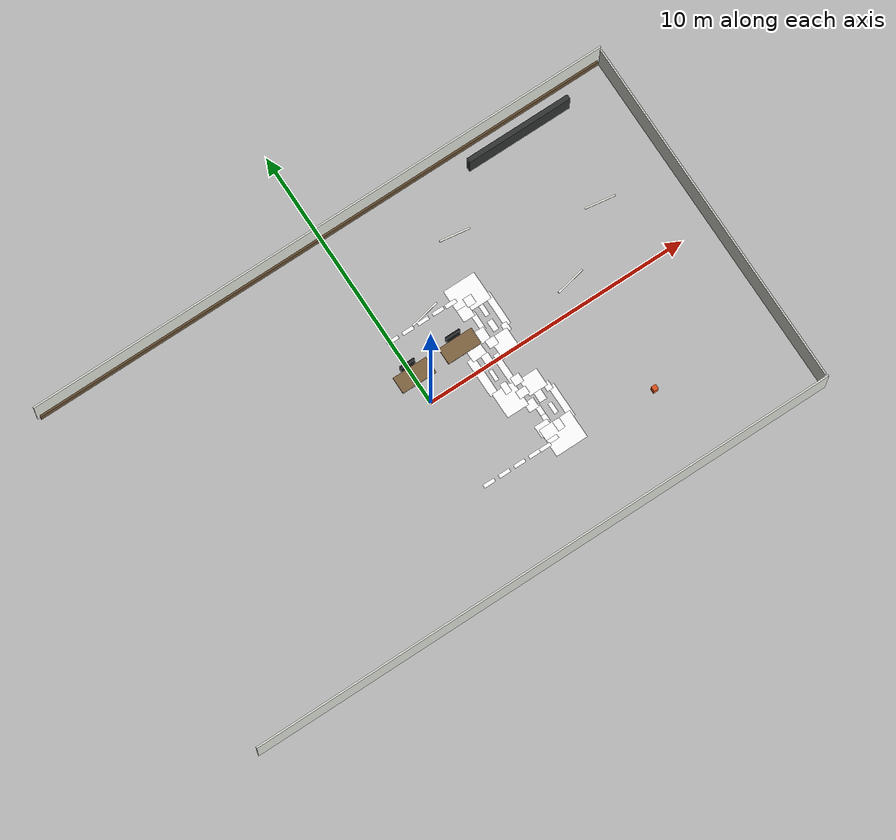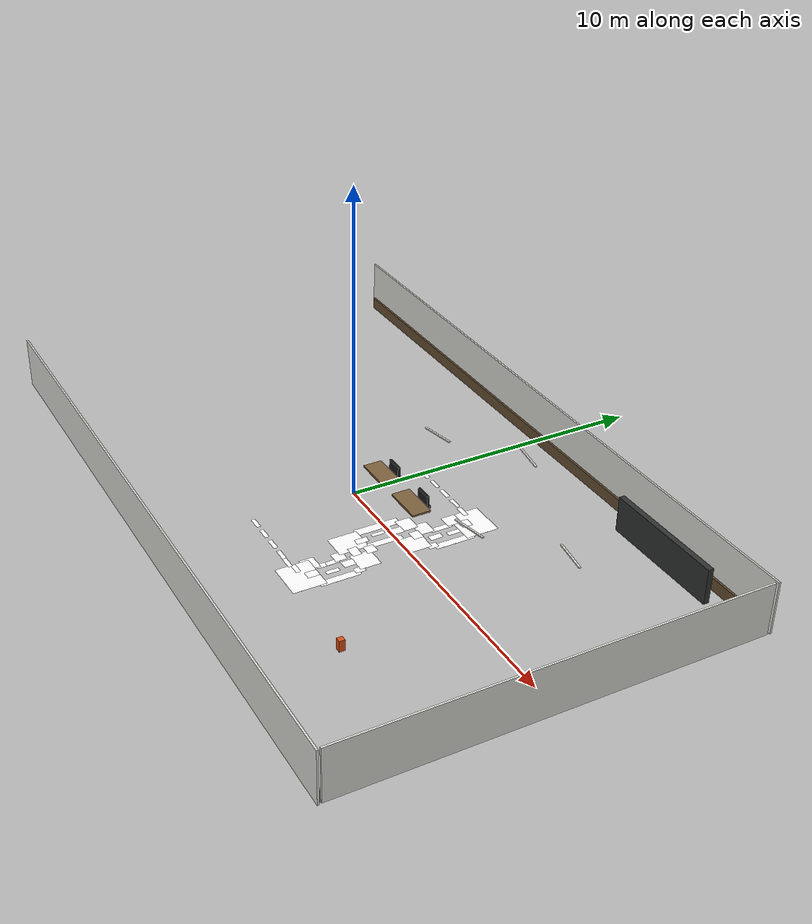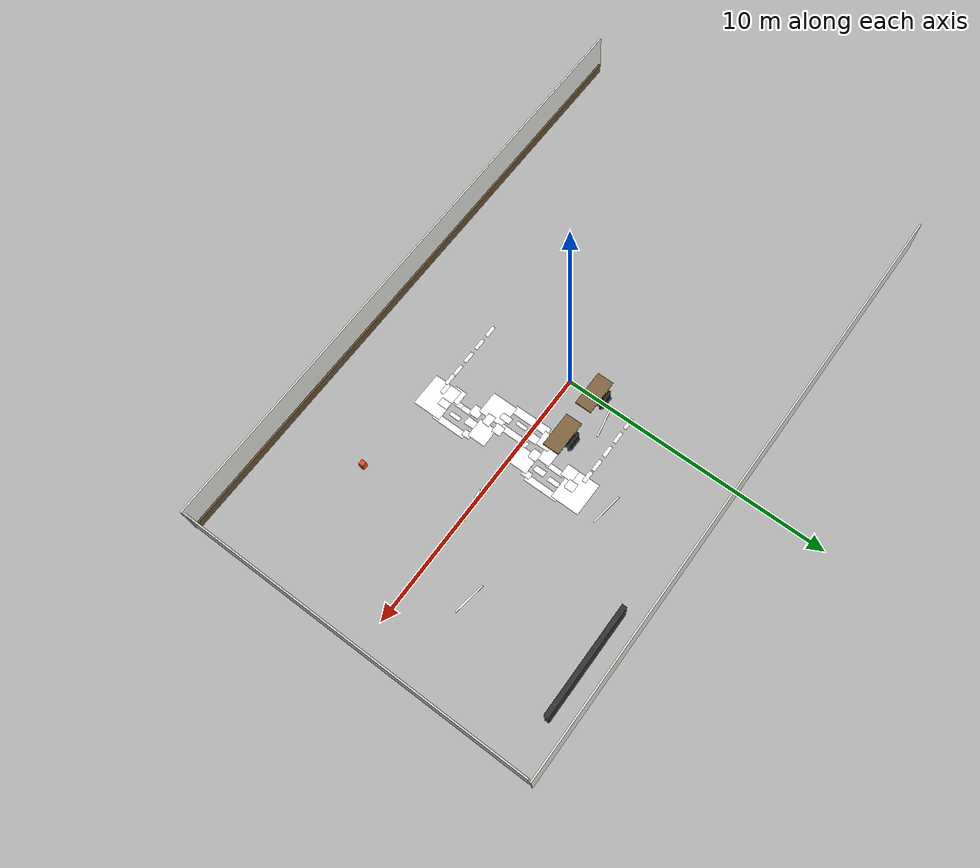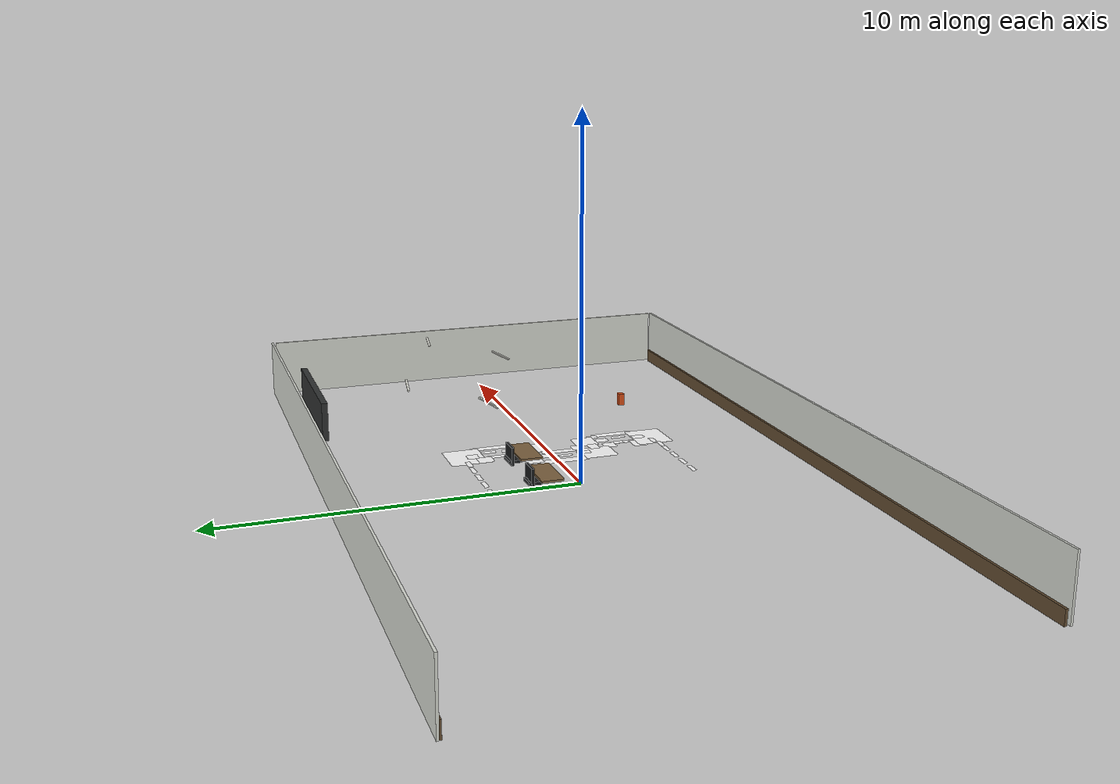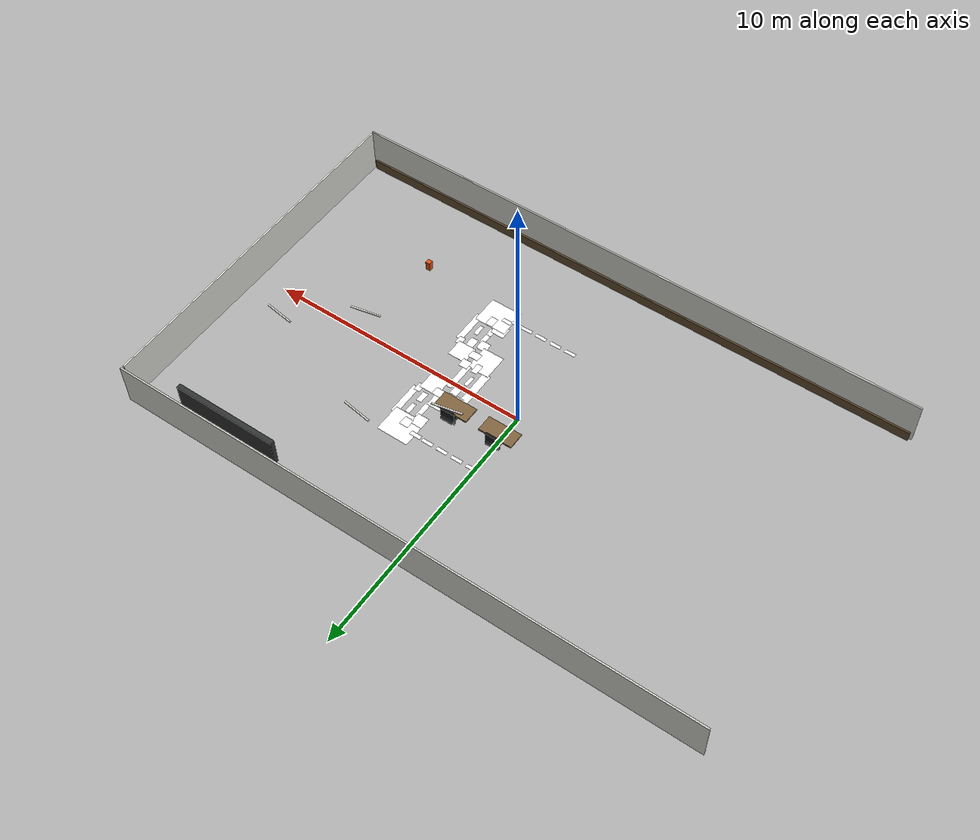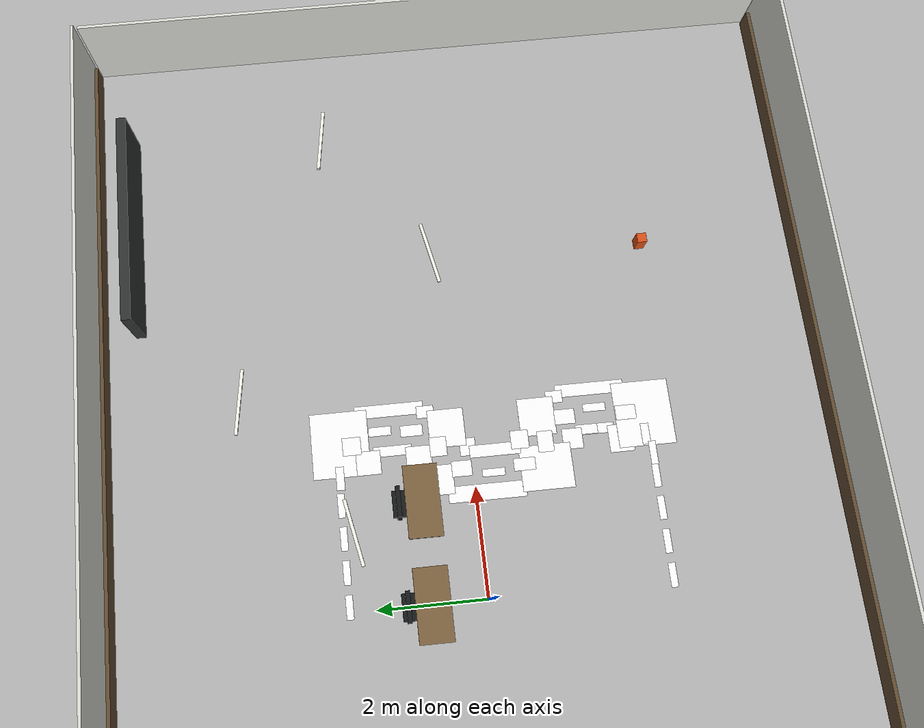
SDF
<sdf version="1.7">
 <world name="kookmin_xycar_track">
  <model name="white_line_cad_07">
   <static>true</static>
   <pose>2.8650 -2.3150 0.0152 0 0 0</pose>
   <link name="white_line_cad_07_surface">
    <visual name="visual">
     <cast_shadows>false</cast_shadows>
     <geometry><plane><normal>0 0 1</normal><size>0.1900 0.7100</size></plane></geometry>
     <material>
      <ambient>1 1 1 1</ambient>
      <diffuse>1 1 1 1</diffuse>
      <emissive>0.9490 0.9490 0.9255 1</emissive>
      <pbr>
       <metal>
        <albedo_map>file://media/materials/textures/kookmin_white_line_cad_07.png</albedo_map>
        <roughness>1</roughness>
        <metalness>0</metalness>
       </metal>
      </pbr>
     </material>
    </visual>
   </link>
  </model>
  <model name="white_line_cad_08">
   <static>true</static>
   <pose>2.6450 -2.7750 0.0154 0 0 0</pose>
   <link name="white_line_cad_08_surface">
    <visual name="visual">
     <cast_shadows>false</cast_shadows>
     <geometry><plane><normal>0 0 1</normal><size>0.5100 0.4500</size></plane></geometry>
     <material>
      <ambient>1 1 1 1</ambient>
      <diffuse>1 1 1 1</diffuse>
      <emissive>0.9490 0.9490 0.9255 1</emissive>
      <pbr>
       <metal>
        <albedo_map>file://media/materials/textures/kookmin_white_line_cad_08.png</albedo_map>
        <roughness>1</roughness>
        <metalness>0</metalness>
       </metal>
      </pbr>
     </material>
    </visual>
   </link>
  </model>
  <model name="white_line_cad_09">
   <static>true</static>
   <pose>3.0700 -3.2600 0.0156 0 0 0</pose>
   <link name="white_line_cad_09_surface">
    <visual name="visual">
     <cast_shadows>false</cast_shadows>
     <geometry><plane><normal>0 0 1</normal><size>1.2200 1.0600</size></plane></geometry>
     <material>
      <ambient>1 1 1 1</ambient>
      <diffuse>1 1 1 1</diffuse>
      <emissive>0.9490 0.9490 0.9255 1</emissive>
      <pbr>
       <metal>
        <albedo_map>file://media/materials/textures/kookmin_white_line_cad_09.png</albedo_map>
        <roughness>1</roughness>
        <metalness>0</metalness>
       </metal>
      </pbr>
     </material>
    </visual>
   </link>
  </model>
  <model name="white_line_cad_10">
   <static>true</static>
   <pose>3.6300 -2.3200 0.0158 0 0 0</pose>
   <link name="white_line_cad_10_surface">
    <visual name="visual">
     <cast_shadows>false</cast_shadows>
     <geometry><plane><normal>0 0 1</normal><size>0.2400 1.2800</size></plane></geometry>
     <material>
      <ambient>1 1 1 1</ambient>
      <diffuse>1 1 1 1</diffuse>
      <emissive>0.9490 0.9490 0.9255 1</emissive>
      <pbr>
       <metal>
        <albedo_map>file://media/materials/textures/kookmin_white_line_cad_10.png</albedo_map>
        <roughness>1</roughness>
        <metalness>0</metalness>
       </metal>
      </pbr>
     </material>
    </visual>
   </link>
  </model>
  <model name="white_line_cad_11">
   <static>true</static>
   <pose>3.5350 -1.6450 0.0160 0 0 0</pose>
   <link name="white_line_cad_11_surface">
    <visual name="visual">
     <cast_shadows>false</cast_shadows>
     <geometry><plane><normal>0 0 1</normal><size>0.2300 0.3100</size></plane></geometry>
     <material>
      <ambient>1 1 1 1</ambient>
      <diffuse>1 1 1 1</diffuse>
      <emissive>0.9490 0.9490 0.9255 1</emissive>
      <pbr>
       <metal>
        <albedo_map>file://media/materials/textures/kookmin_white_line_cad_11.png</albedo_map>
        <roughness>1</roughness>
        <metalness>0</metalness>
       </metal>
      </pbr>
     </material>
    </visual>
   </link>
  </model>
  <model name="white_line_cad_12">
   <static>true</static>
   <pose>2.8150 1.4450 0.0162 0 0 0</pose>
   <link name="white_line_cad_12_surface">
    <visual name="visual">
     <cast_shadows>false</cast_shadows>
     <geometry><plane><normal>0 0 1</normal><size>0.1900 0.7100</size></plane></geometry>
     <material>
      <ambient>1 1 1 1</ambient>
      <diffuse>1 1 1 1</diffuse>
      <emissive>0.9490 0.9490 0.9255 1</emissive>
      <pbr>
       <metal>
        <albedo_map>file://media/materials/textures/kookmin_white_line_cad_12.png</albedo_map>
        <roughness>1</roughness>
        <metalness>0</metalness>
       </metal>
      </pbr>
     </material>
    </visual>
   </link>
  </model>
  <model name="white_line_cad_13">
   <static>true</static>
   <pose>2.6000 0.9750 0.0164 0 0 0</pose>
   <link name="white_line_cad_13_surface">
    <visual name="visual">
     <cast_shadows>false</cast_shadows>
     <geometry><plane><normal>0 0 1</normal><size>0.5200 0.4700</size></plane></geometry>
     <material>
      <ambient>1 1 1 1</ambient>
      <diffuse>1 1 1 1</diffuse>
      <emissive>0.9490 0.9490 0.9255 1</emissive>
      <pbr>
       <metal>
        <albedo_map>file://media/materials/textures/kookmin_white_line_cad_13.png</albedo_map>
        <roughness>1</roughness>
        <metalness>0</metalness>
       </metal>
      </pbr>
     </material>
    </visual>
   </link>
  </model>
  <model name="white_line_cad_14">
   <static>true</static>
   <pose>3.0200 2.4000 0.0166 0 0 0</pose>
   <link name="white_line_cad_14_surface">
    <visual name="visual">
     <cast_shadows>false</cast_shadows>
     <geometry><plane><normal>0 0 1</normal><size>1.2200 1.0600</size></plane></geometry>
     <material>
      <ambient>1 1 1 1</ambient>
      <diffuse>1 1 1 1</diffuse>
      <emissive>0.9490 0.9490 0.9255 1</emissive>
      <pbr>
       <metal>
        <albedo_map>file://media/materials/textures/kookmin_white_line_cad_14.png</albedo_map>
        <roughness>1</roughness>
        <metalness>0</metalness>
       </metal>
      </pbr>
     </material>
    </visual>
   </link>
  </model>
  <model name="white_line_cad_15">
   <static>true</static>
   <pose>3.5800 1.4500 0.0168 0 0 0</pose>
   <link name="white_line_cad_15_surface">
    <visual name="visual">
     <cast_shadows>false</cast_shadows>
     <geometry><plane><normal>0 0 1</normal><size>0.2400 1.2800</size></plane></geometry>
     <material>
      <ambient>1 1 1 1</ambient>
      <diffuse>1 1 1 1</diffuse>
      <emissive>0.9490 0.9490 0.9255 1</emissive>
      <pbr>
       <metal>
        <albedo_map>file://media/materials/textures/kookmin_white_line_cad_15.png</albedo_map>
        <roughness>1</roughness>
        <metalness>0</metalness>
       </metal>
      </pbr>
     </material>
    </visual>
   </link>
  </model>
  <model name="white_line_cad_16">
   <static>true</static>
   <pose>3.4850 0.7800 0.0170 0 0 0</pose>
   <link name="white_line_cad_16_surface">
    <visual name="visual">
     <cast_shadows>false</cast_shadows>
     <geometry><plane><normal>0 0 1</normal><size>0.2300 0.3200</size></plane></geometry>
     <material>
      <ambient>1 1 1 1</ambient>
      <diffuse>1 1 1 1</diffuse>
      <emissive>0.9490 0.9490 0.9255 1</emissive>
      <pbr>
       <metal>
        <albedo_map>file://media/materials/textures/kookmin_white_line_cad_16.png</albedo_map>
        <roughness>1</roughness>
        <metalness>0</metalness>
       </metal>
      </pbr>
     </material>
    </visual>
   </link>
  </model>
  <model name="white_line_cad_17">
   <static>true</static>
   <pose>1.9000 -0.2050 0.0172 0 0 0</pose>
   <link name="white_line_cad_17_surface">
    <visual name="visual">
     <cast_shadows>false</cast_shadows>
     <geometry><plane><normal>0 0 1</normal><size>0.3000 1.4300</size></plane></geometry>
     <material>
      <ambient>1 1 1 1</ambient>
      <diffuse>1 1 1 1</diffuse>
      <emissive>0.9490 0.9490 0.9255 1</emissive>
      <pbr>
       <metal>
        <albedo_map>file://media/materials/textures/kookmin_white_line_cad_17.png</albedo_map>
        <roughness>1</roughness>
        <metalness>0</metalness>
       </metal>
      </pbr>
     </material>
    </visual>
   </link>
  </model>
  <model name="white_line_cad_22">
   <static>true</static>
   <pose>2.8700 -2.1650 0.0182 0 0 0</pose>
   <link name="white_line_cad_22_surface">
    <visual name="visual">
     <cast_shadows>false</cast_shadows>
     <geometry><plane><normal>0 0 1</normal><size>0.1800 0.4100</size></plane></geometry>
     <material>
      <ambient>1 1 1 1</ambient>
      <diffuse>1 1 1 1</diffuse>
      <emissive>0.9490 0.9490 0.9255 1</emissive>
      <pbr>
       <metal>
        <albedo_map>file://media/materials/textures/kookmin_white_line_cad_22.png</albedo_map>
        <roughness>1</roughness>
        <metalness>0</metalness>
       </metal>
      </pbr>
     </material>
    </visual>
   </link>
  </model>
  <model name="white_line_cad_23">
   <static>true</static>
   <pose>2.2450 -1.3400 0.0184 0 0 0</pose>
   <link name="white_line_cad_23_surface">
    <visual name="visual">
     <cast_shadows>false</cast_shadows>
     <geometry><plane><normal>0 0 1</normal><size>0.8300 0.9600</size></plane></geometry>
     <material>
      <ambient>1 1 1 1</ambient>
      <diffuse>1 1 1 1</diffuse>
      <emissive>0.9490 0.9490 0.9255 1</emissive>
      <pbr>
       <metal>
        <albedo_map>file://media/materials/textures/kookmin_white_line_cad_23.png</albedo_map>
        <roughness>1</roughness>
        <metalness>0</metalness>
       </metal>
      </pbr>
     </material>
    </visual>
   </link>
  </model>
  <model name="white_line_cad_24">
   <static>true</static>
   <pose>2.7200 -1.8850 0.0186 0 0 0</pose>
   <link name="white_line_cad_24_surface">
    <visual name="visual">
     <cast_shadows>false</cast_shadows>
     <geometry><plane><normal>0 0 1</normal><size>0.3800 0.3700</size></plane></geometry>
     <material>
      <ambient>1 1 1 1</ambient>
      <diffuse>1 1 1 1</diffuse>
      <emissive>0.9490 0.9490 0.9255 1</emissive>
      <pbr>
       <metal>
        <albedo_map>file://media/materials/textures/kookmin_white_line_cad_24.png</albedo_map>
        <roughness>1</roughness>
        <metalness>0</metalness>
       </metal>
      </pbr>
     </material>
    </visual>
   </link>
  </model>
  <model name="white_line_cad_25">
   <static>true</static>
   <pose>2.1950 0.6250 0.0188 0 0 0</pose>
   <link name="white_line_cad_25_surface">
    <visual name="visual">
     <cast_shadows>false</cast_shadows>
     <geometry><plane><normal>0 0 1</normal><size>0.5500 0.4900</size></plane></geometry>
     <material>
      <ambient>1 1 1 1</ambient>
      <diffuse>1 1 1 1</diffuse>
      <emissive>0.9490 0.9490 0.9255 1</emissive>
      <pbr>
       <metal>
        <albedo_map>file://media/materials/textures/kookmin_white_line_cad_25.png</albedo_map>
        <roughness>1</roughness>
        <metalness>0</metalness>
       </metal>
      </pbr>
     </material>
    </visual>
   </link>
  </model>
  <model name="white_line_cad_26">
   <static>true</static>
   <pose>2.7550 0.0650 0.0190 0 0 0</pose>
   <link name="white_line_cad_26_surface">
    <visual name="visual">
     <cast_shadows>false</cast_shadows>
     <geometry><plane><normal>0 0 1</normal><size>0.3300 0.2900</size></plane></geometry>
     <material>
      <ambient>1 1 1 1</ambient>
      <diffuse>1 1 1 1</diffuse>
      <emissive>0.9490 0.9490 0.9255 1</emissive>
      <pbr>
       <metal>
        <albedo_map>file://media/materials/textures/kookmin_white_line_cad_26.png</albedo_map>
        <roughness>1</roughness>
        <metalness>0</metalness>
       </metal>
      </pbr>
     </material>
    </visual>
   </link>
  </model>
  <model name="white_line_cad_27">
   <static>true</static>
   <pose>3.1450 0.4150 0.0192 0 0 0</pose>
   <link name="white_line_cad_27_surface">
    <visual name="visual">
     <cast_shadows>false</cast_shadows>
     <geometry><plane><normal>0 0 1</normal><size>0.7100 0.6700</size></plane></geometry>
     <material>
      <ambient>1 1 1 1</ambient>
      <diffuse>1 1 1 1</diffuse>
      <emissive>0.9490 0.9490 0.9255 1</emissive>
      <pbr>
       <metal>
        <albedo_map>file://media/materials/textures/kookmin_white_line_cad_27.png</albedo_map>
        <roughness>1</roughness>
        <metalness>0</metalness>
       </metal>
      </pbr>
     </material>
    </visual>
   </link>
  </model>
  <model name="white_line_cad_28">
   <static>true</static>
   <pose>2.6550 -0.4300 0.0194 0 0 0</pose>
   <link name="white_line_cad_28_surface">
    <visual name="visual">
     <cast_shadows>false</cast_shadows>
     <geometry><plane><normal>0 0 1</normal><size>0.2300 0.9400</size></plane></geometry>
     <material>
      <ambient>1 1 1 1</ambient>
      <diffuse>1 1 1 1</diffuse>
      <emissive>0.9490 0.9490 0.9255 1</emissive>
      <pbr>
       <metal>
        <albedo_map>file://media/materials/textures/kookmin_white_line_cad_28.png</albedo_map>
        <roughness>1</roughness>
        <metalness>0</metalness>
       </metal>
      </pbr>
     </material>
    </visual>
   </link>
  </model>
  <model name="white_line_cad_29">
   <static>true</static>
   <pose>3.1950 -1.2750 0.0196 0 0 0</pose>
   <link name="white_line_cad_29_surface">
    <visual name="visual">
     <cast_shadows>false</cast_shadows>
     <geometry><plane><normal>0 0 1</normal><size>0.7100 0.6700</size></plane></geometry>
     <material>
      <ambient>1 1 1 1</ambient>
      <diffuse>1 1 1 1</diffuse>
      <emissive>0.9490 0.9490 0.9255 1</emissive>
      <pbr>
       <metal>
        <albedo_map>file://media/materials/textures/kookmin_white_line_cad_29.png</albedo_map>
        <roughness>1</roughness>
        <metalness>0</metalness>
       </metal>
      </pbr>
     </material>
    </visual>
   </link>
  </model>
  <model name="white_line_cad_30">
   <static>true</static>
   <pose>2.8000 -0.9050 0.0198 0 0 0</pose>
   <link name="white_line_cad_30_surface">
    <visual name="visual">
     <cast_shadows>false</cast_shadows>
     <geometry><plane><normal>0 0 1</normal><size>0.3400 0.3300</size></plane></geometry>
     <material>
      <ambient>1 1 1 1</ambient>
      <diffuse>1 1 1 1</diffuse>
      <emissive>0.9490 0.9490 0.9255 1</emissive>
      <pbr>
       <metal>
        <albedo_map>file://media/materials/textures/kookmin_white_line_cad_30.png</albedo_map>
        <roughness>1</roughness>
        <metalness>0</metalness>
       </metal>
      </pbr>
     </material>
    </visual>
   </link>
  </model>
  <model name="white_line_cad_31">
   <static>true</static>
   <pose>2.6300 1.9050 0.0200 0 0 0</pose>
   <link name="white_line_cad_31_surface">
    <visual name="visual">
     <cast_shadows>false</cast_shadows>
     <geometry><plane><normal>0 0 1</normal><size>0.4400 0.4500</size></plane></geometry>
     <material>
      <ambient>1 1 1 1</ambient>
      <diffuse>1 1 1 1</diffuse>
      <emissive>0.9490 0.9490 0.9255 1</emissive>
      <pbr>
       <metal>
        <albedo_map>file://media/materials/textures/kookmin_white_line_cad_31.png</albedo_map>
        <roughness>1</roughness>
        <metalness>0</metalness>
       </metal>
      </pbr>
     </material>
    </visual>
   </link>
  </model>
  <model name="yellow_centerline_dash_005">
   <static>true</static>
   <pose>0.1050 2.4650 0.0273 0 0 0</pose>
   <link name="yellow_centerline_dash_005_surface">
    <visual name="visual">
     <cast_shadows>false</cast_shadows>
     <geometry><plane><normal>0 0 1</normal><size>0.4300 0.1300</size></plane></geometry>
     <material>
      <ambient>1 1 1 1</ambient>
      <diffuse>1 1 1 1</diffuse>
      <emissive>1.0000 0.7686 0.0471 1</emissive>
      <pbr>
       <metal>
        <albedo_map>file://media/materials/textures/kookmin_yellow_centerline_dash_005.png</albedo_map>
        <roughness>1</roughness>
        <metalness>0</metalness>
       </metal>
      </pbr>
     </material>
    </visual>
   </link>
  </model>
  <model name="yellow_centerline_dash_006">
   <static>true</static>
   <pose>0.7050 2.4650 0.0275 0 0 0</pose>
   <link name="yellow_centerline_dash_006_surface">
    <visual name="visual">
     <cast_shadows>false</cast_shadows>
     <geometry><plane><normal>0 0 1</normal><size>0.4300 0.1300</size></plane></geometry>
     <material>
      <ambient>1 1 1 1</ambient>
      <diffuse>1 1 1 1</diffuse>
      <emissive>1.0000 0.7686 0.0471 1</emissive>
      <pbr>
       <metal>
        <albedo_map>file://media/materials/textures/kookmin_yellow_centerline_dash_006.png</albedo_map>
        <roughness>1</roughness>
        <metalness>0</metalness>
       </metal>
      </pbr>
     </material>
    </visual>
   </link>
  </model>
  <model name="yellow_centerline_dash_007">
   <static>true</static>
   <pose>1.3050 2.4650 0.0277 0 0 0</pose>
   <link name="yellow_centerline_dash_007_surface">
    <visual name="visual">
     <cast_shadows>false</cast_shadows>
     <geometry><plane><normal>0 0 1</normal><size>0.4300 0.1300</size></plane></geometry>
     <material>
      <ambient>1 1 1 1</ambient>
      <diffuse>1 1 1 1</diffuse>
      <emissive>1.0000 0.7686 0.0471 1</emissive>
      <pbr>
       <metal>
        <albedo_map>file://media/materials/textures/kookmin_yellow_centerline_dash_007.png</albedo_map>
        <roughness>1</roughness>
        <metalness>0</metalness>
       </metal>
      </pbr>
     </material>
    </visual>
   </link>
  </model>
  <model name="yellow_centerline_dash_008">
   <static>true</static>
   <pose>1.9000 2.4650 0.0279 0 0 0</pose>
   <link name="yellow_centerline_dash_008_surface">
    <visual name="visual">
     <cast_shadows>false</cast_shadows>
     <geometry><plane><normal>0 0 1</normal><size>0.4400 0.1300</size></plane></geometry>
     <material>
      <ambient>1 1 1 1</ambient>
      <diffuse>1 1 1 1</diffuse>
      <emissive>1.0000 0.7686 0.0471 1</emissive>
      <pbr>
       <metal>
        <albedo_map>file://media/materials/textures/kookmin_yellow_centerline_dash_008.png</albedo_map>
        <roughness>1</roughness>
        <metalness>0</metalness>
       </metal>
      </pbr>
     </material>
    </visual>
   </link>
  </model>
  <model name="yellow_centerline_dash_010">
   <static>true</static>
   <pose>2.3950 2.4450 0.0283 0 0 0</pose>
   <link name="yellow_centerline_dash_010_surface">
    <visual name="visual">
     <cast_shadows>false</cast_shadows>
     <geometry><plane><normal>0 0 1</normal><size>0.4300 0.1500</size></plane></geometry>
     <material>
      <ambient>1 1 1 1</ambient>
      <diffuse>1 1 1 1</diffuse>
      <emissive>1.0000 0.7686 0.0471 1</emissive>
      <pbr>
       <metal>
        <albedo_map>file://media/materials/textures/kookmin_yellow_centerline_dash_010.png</albedo_map>
        <roughness>1</roughness>
        <metalness>0</metalness>
       </metal>
      </pbr>
     </material>
    </visual>
   </link>
  </model>
  <model name="yellow_centerline_dash_012">
   <static>true</static>
   <pose>2.9650 2.1900 0.0287 0 0 0</pose>
   <link name="yellow_centerline_dash_012_surface">
    <visual name="visual">
     <cast_shadows>false</cast_shadows>
     <geometry><plane><normal>0 0 1</normal><size>0.3300 0.3400</size></plane></geometry>
     <material>
      <ambient>1 1 1 1</ambient>
      <diffuse>1 1 1 1</diffuse>
      <emissive>1.0000 0.7686 0.0471 1</emissive>
      <pbr>
       <metal>
        <albedo_map>file://media/materials/textures/kookmin_yellow_centerline_dash_012.png</albedo_map>
        <roughness>1</roughness>
        <metalness>0</metalness>
       </metal>
      </pbr>
     </material>
    </visual>
   </link>
  </model>
  <model name="yellow_centerline_dash_015">
   <static>true</static>
   <pose>3.1950 1.6500 0.0293 0 0 0</pose>
   <link name="yellow_centerline_dash_015_surface">
    <visual name="visual">
     <cast_shadows>false</cast_shadows>
     <geometry><plane><normal>0 0 1</normal><size>0.1700 0.4200</size></plane></geometry>
     <material>
      <ambient>1 1 1 1</ambient>
      <diffuse>1 1 1 1</diffuse>
      <emissive>1.0000 0.7686 0.0471 1</emissive>
      <pbr>
       <metal>
        <albedo_map>file://media/materials/textures/kookmin_yellow_centerline_dash_015.png</albedo_map>
        <roughness>1</roughness>
        <metalness>0</metalness>
       </metal>
      </pbr>
     </material>
    </visual>
   </link>
  </model>
  <model name="yellow_centerline_dash_017">
   <static>true</static>
   <pose>3.1550 1.0650 0.0297 0 0 0</pose>
   <link name="yellow_centerline_dash_017_surface">
    <visual name="visual">
     <cast_shadows>false</cast_shadows>
     <geometry><plane><normal>0 0 1</normal><size>0.2100 0.4100</size></plane></geometry>
     <material>
      <ambient>1 1 1 1</ambient>
      <diffuse>1 1 1 1</diffuse>
      <emissive>1.0000 0.7686 0.0471 1</emissive>
      <pbr>
       <metal>
        <albedo_map>file://media/materials/textures/kookmin_yellow_centerline_dash_017.png</albedo_map>
        <roughness>1</roughness>
        <metalness>0</metalness>
       </metal>
      </pbr>
     </material>
    </visual>
   </link>
  </model>
  <model name="yellow_centerline_dash_018">
   <static>true</static>
   <pose>2.8100 0.6050 0.0299 0 0 0</pose>
   <link name="yellow_centerline_dash_018_surface">
    <visual name="visual">
     <cast_shadows>false</cast_shadows>
     <geometry><plane><normal>0 0 1</normal><size>0.3600 0.3100</size></plane></geometry>
     <material>
      <ambient>1 1 1 1</ambient>
      <diffuse>1 1 1 1</diffuse>
      <emissive>1.0000 0.7686 0.0471 1</emissive>
      <pbr>
       <metal>
        <albedo_map>file://media/materials/textures/kookmin_yellow_centerline_dash_018.png</albedo_map>
        <roughness>1</roughness>
        <metalness>0</metalness>
       </metal>
      </pbr>
     </material>
    </visual>
   </link>
  </model>
  <model name="yellow_centerline_dash_020">
   <static>true</static>
   <pose>2.3650 0.2150 0.0303 0 0 0</pose>
   <link name="yellow_centerline_dash_020_surface">
    <visual name="visual">
     <cast_shadows>false</cast_shadows>
     <geometry><plane><normal>0 0 1</normal><size>0.2900 0.3700</size></plane></geometry>
     <material>
      <ambient>1 1 1 1</ambient>
      <diffuse>1 1 1 1</diffuse>
      <emissive>1.0000 0.7686 0.0471 1</emissive>
      <pbr>
       <metal>
        <albedo_map>file://media/materials/textures/kookmin_yellow_centerline_dash_020.png</albedo_map>
        <roughness>1</roughness>
        <metalness>0</metalness>
       </metal>
      </pbr>
     </material>
    </visual>
   </link>
  </model>
  <model name="yellow_centerline_dash_022">
   <static>true</static>
   <pose>2.2400 -0.3600 0.0307 0 0 0</pose>
   <link name="yellow_centerline_dash_022_surface">
    <visual name="visual">
     <cast_shadows>false</cast_shadows>
     <geometry><plane><normal>0 0 1</normal><size>0.1400 0.4200</size></plane></geometry>
     <material>
      <ambient>1 1 1 1</ambient>
      <diffuse>1 1 1 1</diffuse>
      <emissive>1.0000 0.7686 0.0471 1</emissive>
      <pbr>
       <metal>
        <albedo_map>file://media/materials/textures/kookmin_yellow_centerline_dash_022.png</albedo_map>
        <roughness>1</roughness>
        <metalness>0</metalness>
       </metal>
      </pbr>
     </material>
    </visual>
   </link>
  </model>
  <model name="yellow_centerline_dash_024">
   <static>true</static>
   <pose>2.3350 -0.9400 0.0311 0 0 0</pose>
   <link name="yellow_centerline_dash_024_surface">
    <visual name="visual">
     <cast_shadows>false</cast_shadows>
     <geometry><plane><normal>0 0 1</normal><size>0.2300 0.4000</size></plane></geometry>
     <material>
      <ambient>1 1 1 1</ambient>
      <diffuse>1 1 1 1</diffuse>
      <emissive>1.0000 0.7686 0.0471 1</emissive>
      <pbr>
       <metal>
        <albedo_map>file://media/materials/textures/kookmin_yellow_centerline_dash_024.png</albedo_map>
        <roughness>1</roughness>
        <metalness>0</metalness>
       </metal>
      </pbr>
     </material>
    </visual>
   </link>
  </model>
  <model name="yellow_centerline_dash_026">
   <static>true</static>
   <pose>2.7150 -1.3750 0.0315 0 0 0</pose>
   <link name="yellow_centerline_dash_026_surface">
    <visual name="visual">
     <cast_shadows>false</cast_shadows>
     <geometry><plane><normal>0 0 1</normal><size>0.3900 0.2900</size></plane></geometry>
     <material>
      <ambient>1 1 1 1</ambient>
      <diffuse>1 1 1 1</diffuse>
      <emissive>1.0000 0.7686 0.0471 1</emissive>
      <pbr>
       <metal>
        <albedo_map>file://media/materials/textures/kookmin_yellow_centerline_dash_026.png</albedo_map>
        <roughness>1</roughness>
        <metalness>0</metalness>
       </metal>
      </pbr>
     </material>
    </visual>
   </link>
  </model>
  <model name="yellow_centerline_dash_027">
   <static>true</static>
   <pose>3.1400 -1.7900 0.0317 0 0 0</pose>
   <link name="yellow_centerline_dash_027_surface">
    <visual name="visual">
     <cast_shadows>false</cast_shadows>
     <geometry><plane><normal>0 0 1</normal><size>0.2800 0.3800</size></plane></geometry>
     <material>
      <ambient>1 1 1 1</ambient>
      <diffuse>1 1 1 1</diffuse>
      <emissive>1.0000 0.7686 0.0471 1</emissive>
      <pbr>
       <metal>
        <albedo_map>file://media/materials/textures/kookmin_yellow_centerline_dash_027.png</albedo_map>
        <roughness>1</roughness>
        <metalness>0</metalness>
       </metal>
      </pbr>
     </material>
    </visual>
   </link>
  </model>
  <model name="yellow_centerline_dash_029">
   <static>true</static>
   <pose>3.2650 -2.3600 0.0321 0 0 0</pose>
   <link name="yellow_centerline_dash_029_surface">
    <visual name="visual">
     <cast_shadows>false</cast_shadows>
     <geometry><plane><normal>0 0 1</normal><size>0.1500 0.4200</size></plane></geometry>
     <material>
      <ambient>1 1 1 1</ambient>
      <diffuse>1 1 1 1</diffuse>
      <emissive>1.0000 0.7686 0.0471 1</emissive>
      <pbr>
       <metal>
        <albedo_map>file://media/materials/textures/kookmin_yellow_centerline_dash_029.png</albedo_map>
        <roughness>1</roughness>
        <metalness>0</metalness>
       </metal>
      </pbr>
     </material>
    </visual>
   </link>
  </model>
  <model name="yellow_centerline_dash_031">
   <static>true</static>
   <pose>3.1150 -2.9300 0.0325 0 0 0</pose>
   <link name="yellow_centerline_dash_031_surface">
    <visual name="visual">
     <cast_shadows>false</cast_shadows>
     <geometry><plane><normal>0 0 1</normal><size>0.2700 0.3800</size></plane></geometry>
     <material>
      <ambient>1 1 1 1</ambient>
      <diffuse>1 1 1 1</diffuse>
      <emissive>1.0000 0.7686 0.0471 1</emissive>
      <pbr>
       <metal>
        <albedo_map>file://media/materials/textures/kookmin_yellow_centerline_dash_031.png</albedo_map>
        <roughness>1</roughness>
        <metalness>0</metalness>
       </metal>
      </pbr>
     </material>
    </visual>
   </link>
  </model>
  <model name="yellow_centerline_dash_034">
   <static>true</static>
   <pose>2.6750 -3.2350 0.0331 0 0 0</pose>
   <link name="yellow_centerline_dash_034_surface">
    <visual name="visual">
     <cast_shadows>false</cast_shadows>
     <geometry><plane><normal>0 0 1</normal><size>0.3900 0.1500</size></plane></geometry>
     <material>
      <ambient>1 1 1 1</ambient>
      <diffuse>1 1 1 1</diffuse>
      <emissive>1.0000 0.7686 0.0471 1</emissive>
      <pbr>
       <metal>
        <albedo_map>file://media/materials/textures/kookmin_yellow_centerline_dash_034.png</albedo_map>
        <roughness>1</roughness>
        <metalness>0</metalness>
       </metal>
      </pbr>
     </material>
    </visual>
   </link>
  </model>
  <model name="yellow_centerline_dash_040">
   <static>true</static>
   <pose>0.1050 -3.3150 0.0343 0 0 0</pose>
   <link name="yellow_centerline_dash_040_surface">
    <visual name="visual">
     <cast_shadows>false</cast_shadows>
     <geometry><plane><normal>0 0 1</normal><size>0.4300 0.1300</size></plane></geometry>
     <material>
      <ambient>1 1 1 1</ambient>
      <diffuse>1 1 1 1</diffuse>
      <emissive>1.0000 0.7686 0.0471 1</emissive>
      <pbr>
       <metal>
        <albedo_map>file://media/materials/textures/kookmin_yellow_centerline_dash_040.png</albedo_map>
        <roughness>1</roughness>
        <metalness>0</metalness>
       </metal>
      </pbr>
     </material>
    </visual>
   </link>
  </model>
  <model name="yellow_centerline_dash_041">
   <static>true</static>
   <pose>0.7050 -3.3150 0.0345 0 0 0</pose>
   <link name="yellow_centerline_dash_041_surface">
    <visual name="visual">
     <cast_shadows>false</cast_shadows>
     <geometry><plane><normal>0 0 1</normal><size>0.4300 0.1300</size></plane></geometry>
     <material>
      <ambient>1 1 1 1</ambient>
      <diffuse>1 1 1 1</diffuse>
      <emissive>1.0000 0.7686 0.0471 1</emissive>
      <pbr>
       <metal>
        <albedo_map>file://media/materials/textures/kookmin_yellow_centerline_dash_041.png</albedo_map>
        <roughness>1</roughness>
        <metalness>0</metalness>
       </metal>
      </pbr>
     </material>
    </visual>
   </link>
  </model>
  <model name="yellow_centerline_dash_042">
   <static>true</static>
   <pose>1.3050 -3.3150 0.0347 0 0 0</pose>
   <link name="yellow_centerline_dash_042_surface">
    <visual name="visual">
     <cast_shadows>false</cast_shadows>
     <geometry><plane><normal>0 0 1</normal><size>0.4300 0.1300</size></plane></geometry>
     <material>
      <ambient>1 1 1 1</ambient>
      <diffuse>1 1 1 1</diffuse>
      <emissive>1.0000 0.7686 0.0471 1</emissive>
      <pbr>
       <metal>
        <albedo_map>file://media/materials/textures/kookmin_yellow_centerline_dash_042.png</albedo_map>
        <roughness>1</roughness>
        <metalness>0</metalness>
       </metal>
      </pbr>
     </material>
    </visual>
   </link>
  </model>
  <model name="yellow_centerline_dash_043">
   <static>true</static>
   <pose>1.9000 -3.3150 0.0349 0 0 0</pose>
   <link name="yellow_centerline_dash_043_surface">
    <visual name="visual">
     <cast_shadows>false</cast_shadows>
     <geometry><plane><normal>0 0 1</normal><size>0.4400 0.1300</size></plane></geometry>
     <material>
      <ambient>1 1 1 1</ambient>
      <diffuse>1 1 1 1</diffuse>
      <emissive>1.0000 0.7686 0.0471 1</emissive>
      <pbr>
       <metal>
        <albedo_map>file://media/materials/textures/kookmin_yellow_centerline_dash_043.png</albedo_map>
        <roughness>1</roughness>
        <metalness>0</metalness>
       </metal>
      </pbr>
     </material>
    </visual>
   </link>
  </model>
  <model name="yellow_centerline_dash_044">
   <static>true</static>
   <pose>2.3150 -3.3250 0.0351 0 0 0</pose>
   <link name="yellow_centerline_dash_044_surface">
    <visual name="visual">
     <cast_shadows>false</cast_shadows>
     <geometry><plane><normal>0 0 1</normal><size>0.4300 0.1300</size></plane></geometry>
     <material>
      <ambient>1 1 1 1</ambient>
      <diffuse>1 1 1 1</diffuse>
      <emissive>1.0000 0.7686 0.0471 1</emissive>
      <pbr>
       <metal>
        <albedo_map>file://media/materials/textures/kookmin_yellow_centerline_dash_044.png</albedo_map>
        <roughness>1</roughness>
        <metalness>0</metalness>
       </metal>
      </pbr>
     </material>
    </visual>
   </link>
  </model>
  <model name="room_north_wall">
   <static>true</static>
   <pose>0.0000 6.7000 0.9000 0.000000 0.000000 0.000000</pose>
   <link name="north_wall">
    <visual name="visual">
     <geometry><box><size>22.3000 0.0600 1.7000</size></box></geometry>
     <material><ambient>0.8627 0.8706 0.8392 1</ambient><diffuse>0.8627 0.8706 0.8392 1</diffuse></material>
    </visual>
   </link>
  </model>
  <model name="room_south_wall">
   <static>true</static>
   <pose>0.0000 -6.7000 0.9000 0.000000 0.000000 0.000000</pose>
   <link name="south_wall">
    <visual name="visual">
     <geometry><box><size>22.3000 0.0600 1.7000</size></box></geometry>
     <material><ambient>0.8627 0.8706 0.8392 1</ambient><diffuse>0.8627 0.8706 0.8392 1</diffuse></material>
    </visual>
   </link>
  </model>
  <model name="room_east_wall">
   <static>true</static>
   <pose>11.1000 0.0000 0.9000 0.000000 0.000000 0.000000</pose>
   <link name="east_wall">
    <visual name="visual">
     <geometry><box><size>0.0600 13.2000 1.7000</size></box></geometry>
     <material><ambient>0.8627 0.8706 0.8392 1</ambient><diffuse>0.8627 0.8706 0.8392 1</diffuse></material>
    </visual>
   </link>
  </model>
  <model name="room_north_wood_band">
   <static>true</static>
   <pose>0.0000 6.6400 0.2000 0.000000 0.000000 0.000000</pose>
   <link name="north_wood_band">
    <visual name="visual">
     <geometry><box><size>22.1000 0.0800 0.4000</size></box></geometry>
     <material><ambient>0.3922 0.3059 0.1961 1</ambient><diffuse>0.3922 0.3059 0.1961 1</diffuse></material>
    </visual>
   </link>
  </model>
  <model name="room_south_wood_band">
   <static>true</static>
   <pose>0.0000 -6.6400 0.2000 0.000000 0.000000 0.000000</pose>
   <link name="south_wood_band">
    <visual name="visual">
     <geometry><box><size>22.1000 0.0800 0.4000</size></box></geometry>
     <material><ambient>0.3922 0.3059 0.1961 1</ambient><diffuse>0.3922 0.3059 0.1961 1</diffuse></material>
    </visual>
   </link>
  </model>
  <model name="room_locker_bank">
   <static>true</static>
   <pose>7.4000 5.9500 0.7000 0.000000 0.000000 0.000000</pose>
   <link name="locker_bank">
    <visual name="visual">
     <geometry><box><size>4.0000 0.1800 1.1500</size></box></geometry>
     <material><ambient>0.1882 0.1961 0.1961 1</ambient><diffuse>0.1882 0.1961 0.1961 1</diffuse></material>
    </visual>
   </link>
  </model>
  <model name="room_orange_cone_reference">
   <static>true</static>
   <pose>6.4000 -3.7000 0.1800 0.000000 0.000000 0.000000</pose>
   <link name="orange_cone_reference">
    <visual name="visual">
     <geometry><box><size>0.1800 0.1800 0.3600</size></box></geometry>
     <material><ambient>0.8627 0.3137 0.0941 1</ambient><diffuse>0.8627 0.3137 0.0941 1</diffuse></material>
    </visual>
   </link>
  </model>
  <model name="room_table_top_3">
   <static>true</static>
   <pose>0.0000 1.0000 0.4300 0.000000 0.000000 0.000000</pose>
   <link name="table_top_3">
    <visual name="visual">
     <geometry><box><size>1.3000 0.6200 0.0600</size></box></geometry>
     <material><ambient>0.4941 0.3843 0.2471 1</ambient><diffuse>0.4941 0.3843 0.2471 1</diffuse></material>
    </visual>
   </link>
  </model>
  <model name="room_chair_back_3">
   <static>true</static>
   <pose>0.0000 1.4300 0.4200 0.000000 0.000000 0.000000</pose>
   <link name="chair_back_3">
    <visual name="visual">
     <geometry><box><size>0.5500 0.0800 0.5200</size></box></geometry>
     <material><ambient>0.0941 0.0980 0.1020 1</ambient><diffuse>0.0941 0.0980 0.1020 1</diffuse></material>
    </visual>
   </link>
  </model>
  <model name="room_chair_seat_3">
   <static>true</static>
   <pose>0.0000 1.3400 0.2600 0.000000 0.000000 0.000000</pose>
   <link name="chair_seat_3">
    <visual name="visual">
     <geometry><box><size>0.4800 0.4000 0.0800</size></box></geometry>
     <material><ambient>0.0941 0.0980 0.1020 1</ambient><diffuse>0.0941 0.0980 0.1020 1</diffuse></material>
    </visual>
   </link>
  </model>
  <model name="room_table_top_4">
   <static>true</static>
   <pose>1.8000 1.0000 0.4300 0.000000 0.000000 0.000000</pose>
   <link name="table_top_4">
    <visual name="visual">
     <geometry><box><size>1.3000 0.6200 0.0600</size></box></geometry>
     <material><ambient>0.4941 0.3843 0.2471 1</ambient><diffuse>0.4941 0.3843 0.2471 1</diffuse></material>
    </visual>
   </link>
  </model>
  <model name="room_chair_back_4">
   <static>true</static>
   <pose>1.8000 1.4300 0.4200 0.000000 0.000000 0.000000</pose>
   <link name="chair_back_4">
    <visual name="visual">
     <geometry><box><size>0.5500 0.0800 0.5200</size></box></geometry>
     <material><ambient>0.0941 0.0980 0.1020 1</ambient><diffuse>0.0941 0.0980 0.1020 1</diffuse></material>
    </visual>
   </link>
  </model>
  <model name="room_chair_seat_4">
   <static>true</static>
   <pose>1.8000 1.3400 0.2600 0.000000 0.000000 0.000000</pose>
   <link name="chair_seat_4">
    <visual name="visual">
     <geometry><box><size>0.4800 0.4000 0.0800</size></box></geometry>
     <material><ambient>0.0941 0.0980 0.1020 1</ambient><diffuse>0.0941 0.0980 0.1020 1</diffuse></material>
    </visual>
   </link>
  </model>
  <model name="room_ceiling_light_4">
   <static>true</static>
   <pose>1.2000 2.2000 2.1500 0.000000 0.000000 0.200000</pose>
   <link name="ceiling_light_4">
    <visual name="visual">
     <geometry><box><size>1.1000 0.0550 0.0350</size></box></geometry>
     <material><ambient>0.9608 0.9608 0.9216 1</ambient><diffuse>0.9608 0.9608 0.9216 1</diffuse></material>
    </visual>
   </link>
  </model>
  <model name="room_ceiling_light_5">
   <static>true</static>
   <pose>3.5000 3.9000 2.1500 0.000000 0.000000 -0.150000</pose>
   <link name="ceiling_light_5">
    <visual name="visual">
     <geometry><box><size>1.1000 0.0550 0.0350</size></box></geometry>
     <material><ambient>0.9608 0.9608 0.9216 1</ambient><diffuse>0.9608 0.9608 0.9216 1</diffuse></material>
    </visual>
   </link>
  </model>
  <model name="room_ceiling_light_6">
   <static>true</static>
   <pose>5.8000 0.5000 2.1500 0.000000 0.000000 0.200000</pose>
   <link name="ceiling_light_6">
    <visual name="visual">
     <geometry><box><size>1.1000 0.0550 0.0350</size></box></geometry>
     <material><ambient>0.9608 0.9608 0.9216 1</ambient><diffuse>0.9608 0.9608 0.9216 1</diffuse></material>
    </visual>
   </link>
  </model>
  <model name="room_ceiling_light_7">
   <static>true</static>
   <pose>8.1000 2.2000 2.1500 0.000000 0.000000 -0.150000</pose>
   <link name="ceiling_light_7">
    <visual name="visual">
     <geometry><box><size>1.1000 0.0550 0.0350</size></box></geometry>
     <material><ambient>0.9608 0.9608 0.9216 1</ambient><diffuse>0.9608 0.9608 0.9216 1</diffuse></material>
    </visual>
   </link>
  </model>
 </world>
</sdf>
